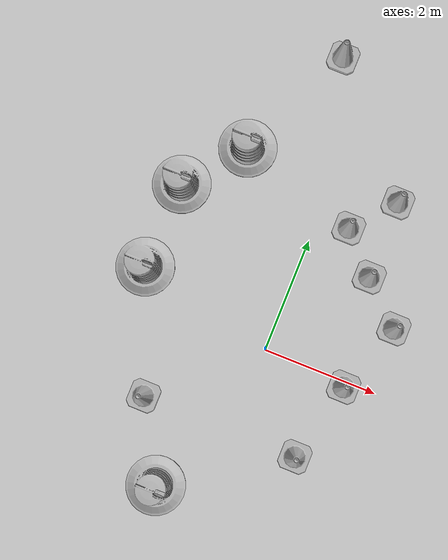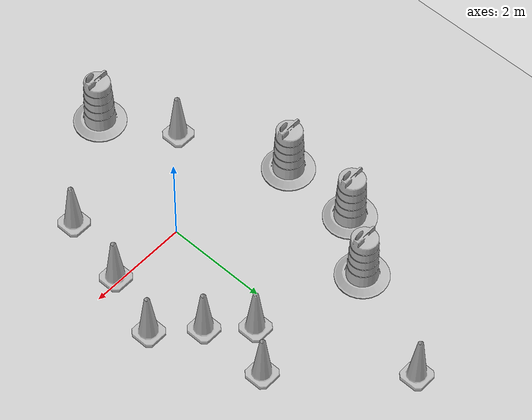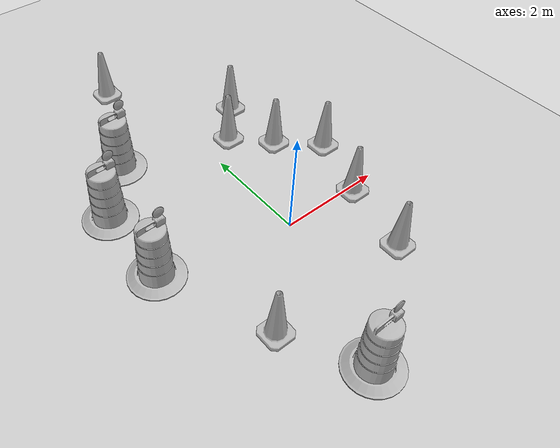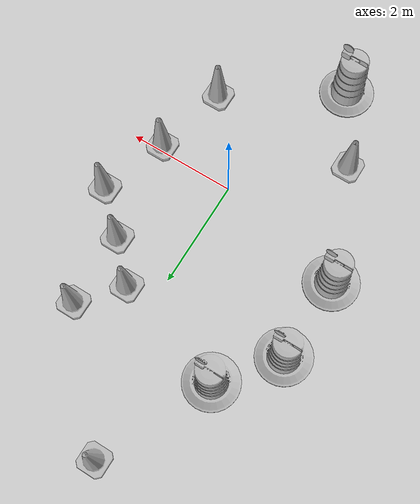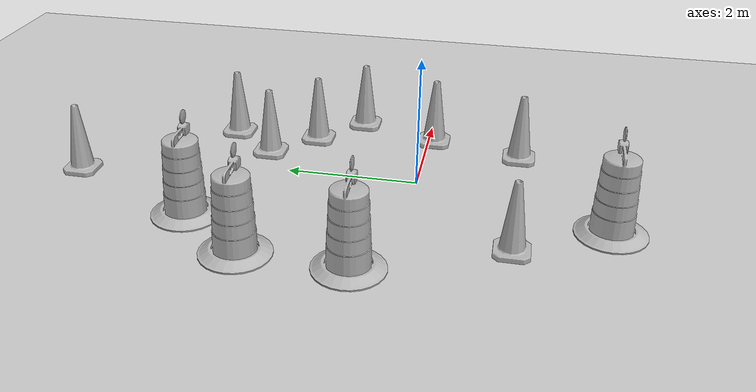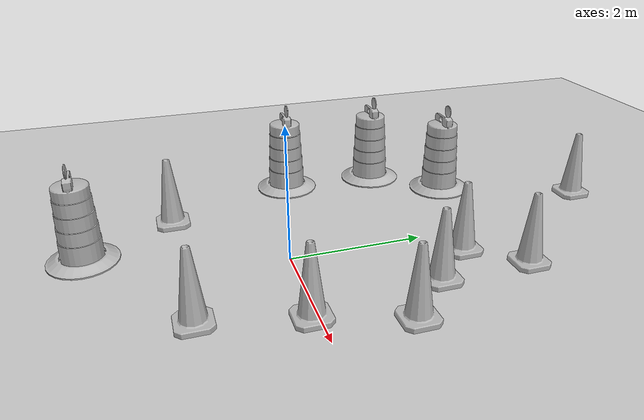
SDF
<sdf version="1.7">
 <world name="default">
  <light name="sun" type="directional">
   <pose>0 0 10 0 -0 0</pose>
   <diffuse>0.8 0.8 0.8 1</diffuse>
   <specular>0.2 0.2 0.2 1</specular>
   <attenuation>
    <range>1000</range>
    <constant>0.9</constant>
    <linear>0.01</linear>
    <quadratic>0.001</quadratic>
   </attenuation>
   <direction>-0.5 0.1 -0.9</direction>
   <spot><inner_angle>0</inner_angle><outer_angle>0</outer_angle><falloff>0</falloff></spot>
  </light>
  <model name="ground_plane">
   <static>1</static>
   <link name="link">
    <collision name="collision">
     <geometry><plane><normal>0 0 1</normal><size>100 100</size></plane></geometry>
     <surface>
      <contact><collide_bitmask>65535</collide_bitmask></contact>
      <friction><ode><mu>100</mu><mu2>50</mu2></ode></friction>
     </surface>
    </collision>
    <visual name="visual">
     <cast_shadows>0</cast_shadows>
     <geometry><plane><normal>0 0 1</normal><size>100 100</size></plane></geometry>
     <material>
      <script><uri>file://media/materials/scripts/gazebo.material</uri><name>Gazebo/Grey</name></script>
     </material>
    </visual>
   </link>
  </model>
  <gravity>0 0 -9.8</gravity>
  <magnetic_field>6e-06 2.3e-05 -4.2e-05</magnetic_field>
  <atmosphere type="adiabatic"/>
  <physics type="ode">
   <max_step_size>0.001</max_step_size>
   <real_time_factor>1</real_time_factor>
   <real_time_update_rate>1000</real_time_update_rate>
  </physics>
  <scene><ambient>0.4 0.4 0.4 1</ambient><background>0.7 0.7 0.7 1</background><shadows>1</shadows></scene>
  <audio><device>default</device></audio>
  <spherical_coordinates>
   <surface_model>EARTH_WGS84</surface_model>
   <latitude_deg>0</latitude_deg>
   <longitude_deg>0</longitude_deg>
   <elevation>0</elevation>
   <heading_deg>0</heading_deg>
  </spherical_coordinates>
  <model name="Construction Cone">
   <link name="link">
    <collision name="collision">
     <geometry>
      <mesh><scale>10 10 10</scale><uri>model://construction_cone/meshes/construction_cone.dae</uri></mesh>
     </geometry>
    </collision>
    <visual name="visual">
     <geometry>
      <mesh><scale>10 10 10</scale><uri>model://construction_cone/meshes/construction_cone.dae</uri></mesh>
     </geometry>
    </visual>
    <inertial>
     <inertia><ixx>1</ixx><ixy>0</ixy><ixz>0</ixz><iyy>1</iyy><iyz>0</iyz><izz>1</izz></inertia>
     <mass>1</mass>
    </inertial>
   </link>
   <pose>1.13884 -1.48951 -1e-05 -1e-06 0 0</pose>
  </model>
  <model name="Construction Barrel">
   <link name="link">
    <inertial>
     <pose>0 0 0.4 0 -0 0</pose>
     <mass>500</mass>
     <inertia><ixx>51.2096</ixx><iyy>51.2096</iyy><izz>25</izz><ixy>0</ixy><ixz>0</ixz><iyz>0</iyz></inertia>
    </inertial>
    <collision name="collision">
     <geometry><mesh><uri>model://construction_barrel/meshes/construction_barrel.dae</uri></mesh></geometry>
    </collision>
    <visual name="visual">
     <geometry><mesh><uri>model://construction_barrel/meshes/construction_barrel.dae</uri></mesh></geometry>
    </visual>
   </link>
   <pose>-2.43351 0.549687 -2e-06 -8e-06 -4e-06 -2e-05</pose>
  </model>
  <model name="Construction Cone_0">
   <link name="link">
    <collision name="collision">
     <geometry>
      <mesh><scale>10 10 10</scale><uri>model://construction_cone/meshes/construction_cone.dae</uri></mesh>
     </geometry>
    </collision>
    <visual name="visual">
     <geometry>
      <mesh><scale>10 10 10</scale><uri>model://construction_cone/meshes/construction_cone.dae</uri></mesh>
     </geometry>
    </visual>
    <inertial>
     <inertia><ixx>1</ixx><ixy>0</ixy><ixz>0</ixz><iyy>1</iyy><iyz>0</iyz><izz>1</izz></inertia>
     <mass>1</mass>
    </inertial>
   </link>
   <pose>1.46851 -0.092214 -0 0 -0 0</pose>
  </model>
  <model name="Construction Cone_1">
   <link name="link">
    <collision name="collision">
     <geometry>
      <mesh><scale>10 10 10</scale><uri>model://construction_cone/meshes/construction_cone.dae</uri></mesh>
     </geometry>
    </collision>
    <visual name="visual">
     <geometry>
      <mesh><scale>10 10 10</scale><uri>model://construction_cone/meshes/construction_cone.dae</uri></mesh>
     </geometry>
    </visual>
    <inertial>
     <inertia><ixx>1</ixx><ixy>0</ixy><ixz>0</ixz><iyy>1</iyy><iyz>0</iyz><izz>1</izz></inertia>
     <mass>1</mass>
    </inertial>
   </link>
   <pose>1.89642 1.14699 -0 0 -0 0</pose>
  </model>
  <model name="Construction Barrel_0">
   <link name="link">
    <inertial>
     <pose>0 0 0.4 0 -0 0</pose>
     <mass>500</mass>
     <inertia><ixx>51.2096</ixx><iyy>51.2096</iyy><izz>25</izz><ixy>0</ixy><ixz>0</ixz><iyz>0</iyz></inertia>
    </inertial>
    <collision name="collision">
     <geometry><mesh><uri>model://construction_barrel/meshes/construction_barrel.dae</uri></mesh></geometry>
    </collision>
    <visual name="visual">
     <geometry><mesh><uri>model://construction_barrel/meshes/construction_barrel.dae</uri></mesh></geometry>
    </visual>
   </link>
   <pose>-2.39359 2.09797 1e-06 3e-06 2e-06 -1.4e-05</pose>
  </model>
  <model name="Construction Cone_2">
   <link name="link">
    <collision name="collision">
     <geometry>
      <mesh><scale>10 10 10</scale><uri>model://construction_cone/meshes/construction_cone.dae</uri></mesh>
     </geometry>
    </collision>
    <visual name="visual">
     <geometry>
      <mesh><scale>10 10 10</scale><uri>model://construction_cone/meshes/construction_cone.dae</uri></mesh>
     </geometry>
    </visual>
    <inertial>
     <inertia><ixx>1</ixx><ixy>0</ixy><ixz>0</ixz><iyy>1</iyy><iyz>0</iyz><izz>1</izz></inertia>
     <mass>1</mass>
    </inertial>
   </link>
   <pose>1.18447 1.81014 -1e-06 4e-06 -0 0</pose>
  </model>
  <model name="Construction Cone_3">
   <link name="link">
    <collision name="collision">
     <geometry>
      <mesh><scale>10 10 10</scale><uri>model://construction_cone/meshes/construction_cone.dae</uri></mesh>
     </geometry>
    </collision>
    <visual name="visual">
     <geometry>
      <mesh><scale>10 10 10</scale><uri>model://construction_cone/meshes/construction_cone.dae</uri></mesh>
     </geometry>
    </visual>
    <inertial>
     <inertia><ixx>1</ixx><ixy>0</ixy><ixz>0</ixz><iyy>1</iyy><iyz>0</iyz><izz>1</izz></inertia>
     <mass>1</mass>
    </inertial>
   </link>
   <pose>0.549334 2.45926 -0 0 -1e-06 0</pose>
  </model>
  <model name="Construction Barrel_1">
   <link name="link">
    <inertial>
     <pose>0 0 0.4 0 -0 0</pose>
     <mass>500</mass>
     <inertia><ixx>51.2096</ixx><iyy>51.2096</iyy><izz>25</izz><ixy>0</ixy><ixz>0</ixz><iyz>0</iyz></inertia>
    </inertial>
    <collision name="collision">
     <geometry><mesh><uri>model://construction_barrel/meshes/construction_barrel.dae</uri></mesh></geometry>
    </collision>
    <visual name="visual">
     <geometry><mesh><uri>model://construction_barrel/meshes/construction_barrel.dae</uri></mesh></geometry>
    </visual>
   </link>
   <pose>-1.57581 3.10357 0 0 0 -7e-06</pose>
  </model>
  <model name="Construction Cone_4">
   <link name="link">
    <collision name="collision">
     <geometry>
      <mesh><scale>10 10 10</scale><uri>model://construction_cone/meshes/construction_cone.dae</uri></mesh>
     </geometry>
    </collision>
    <visual name="visual">
     <geometry>
      <mesh><scale>10 10 10</scale><uri>model://construction_cone/meshes/construction_cone.dae</uri></mesh>
     </geometry>
    </visual>
    <inertial>
     <inertia><ixx>1</ixx><ixy>0</ixy><ixz>0</ixz><iyy>1</iyy><iyz>0</iyz><izz>1</izz></inertia>
     <mass>1</mass>
    </inertial>
   </link>
   <pose>1.16745 3.18459 -0 0 -0 0</pose>
  </model>
  <model name="Construction Cone_5">
   <link name="link">
    <collision name="collision">
     <geometry>
      <mesh><scale>10 10 10</scale><uri>model://construction_cone/meshes/construction_cone.dae</uri></mesh>
     </geometry>
    </collision>
    <visual name="visual">
     <geometry>
      <mesh><scale>10 10 10</scale><uri>model://construction_cone/meshes/construction_cone.dae</uri></mesh>
     </geometry>
    </visual>
    <inertial>
     <inertia><ixx>1</ixx><ixy>0</ixy><ixz>0</ixz><iyy>1</iyy><iyz>0</iyz><izz>1</izz></inertia>
     <mass>1</mass>
    </inertial>
   </link>
   <pose>-0.634348 5.18061 -6e-06 -4e-06 0 0</pose>
  </model>
  <model name="Construction Cone_6">
   <link name="link">
    <collision name="collision">
     <geometry>
      <mesh><scale>10 10 10</scale><uri>model://construction_cone/meshes/construction_cone.dae</uri></mesh>
     </geometry>
    </collision>
    <visual name="visual">
     <geometry>
      <mesh><scale>10 10 10</scale><uri>model://construction_cone/meshes/construction_cone.dae</uri></mesh>
     </geometry>
    </visual>
    <inertial>
     <inertia><ixx>1</ixx><ixy>0</ixy><ixz>0</ixz><iyy>1</iyy><iyz>0</iyz><izz>1</izz></inertia>
     <mass>1</mass>
    </inertial>
   </link>
   <pose>-1.61818 -1.49592 -0 0 -0 0</pose>
  </model>
  <model name="Construction Barrel_2">
   <link name="link">
    <inertial>
     <pose>0 0 0.4 0 -0 0</pose>
     <mass>500</mass>
     <inertia><ixx>51.2096</ixx><iyy>51.2096</iyy><izz>25</izz><ixy>0</ixy><ixz>0</ixz><iyz>0</iyz></inertia>
    </inertial>
    <collision name="collision">
     <geometry><mesh><uri>model://construction_barrel/meshes/construction_barrel.dae</uri></mesh></geometry>
    </collision>
    <visual name="visual">
     <geometry><mesh><uri>model://construction_barrel/meshes/construction_barrel.dae</uri></mesh></geometry>
    </visual>
   </link>
   <pose>-0.861013 -2.81109 -1e-06 3e-06 -2e-06 -2e-06</pose>
  </model>
 </world>
</sdf>
